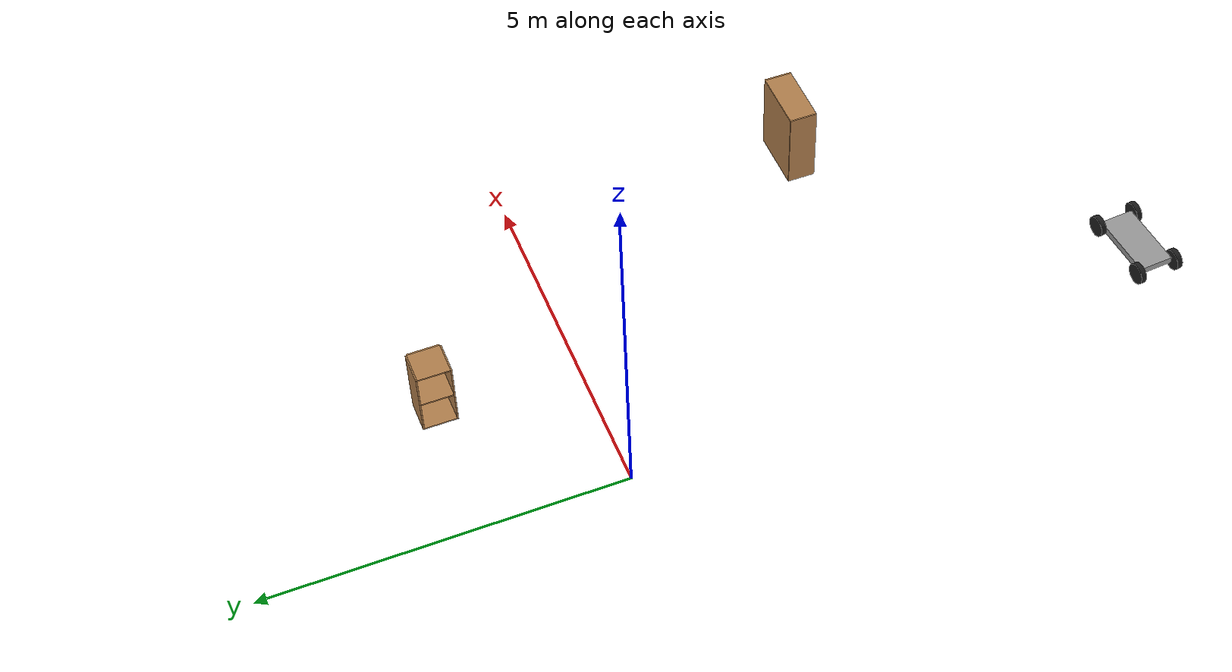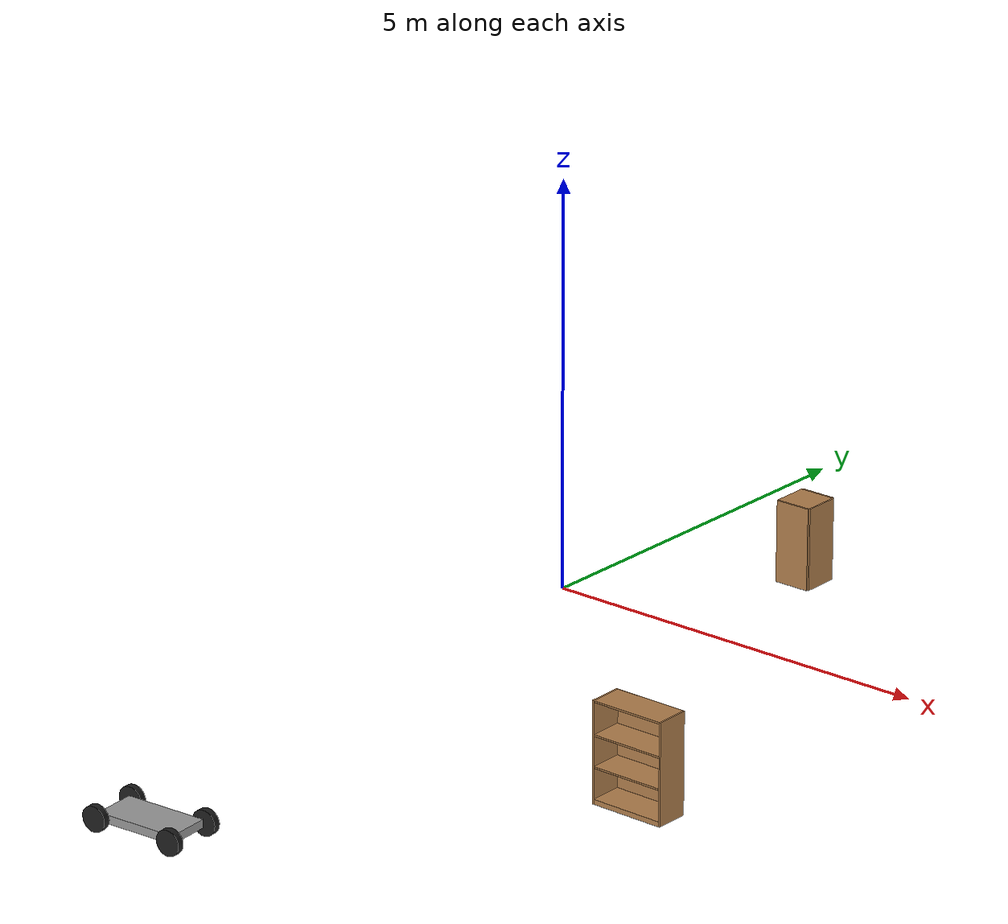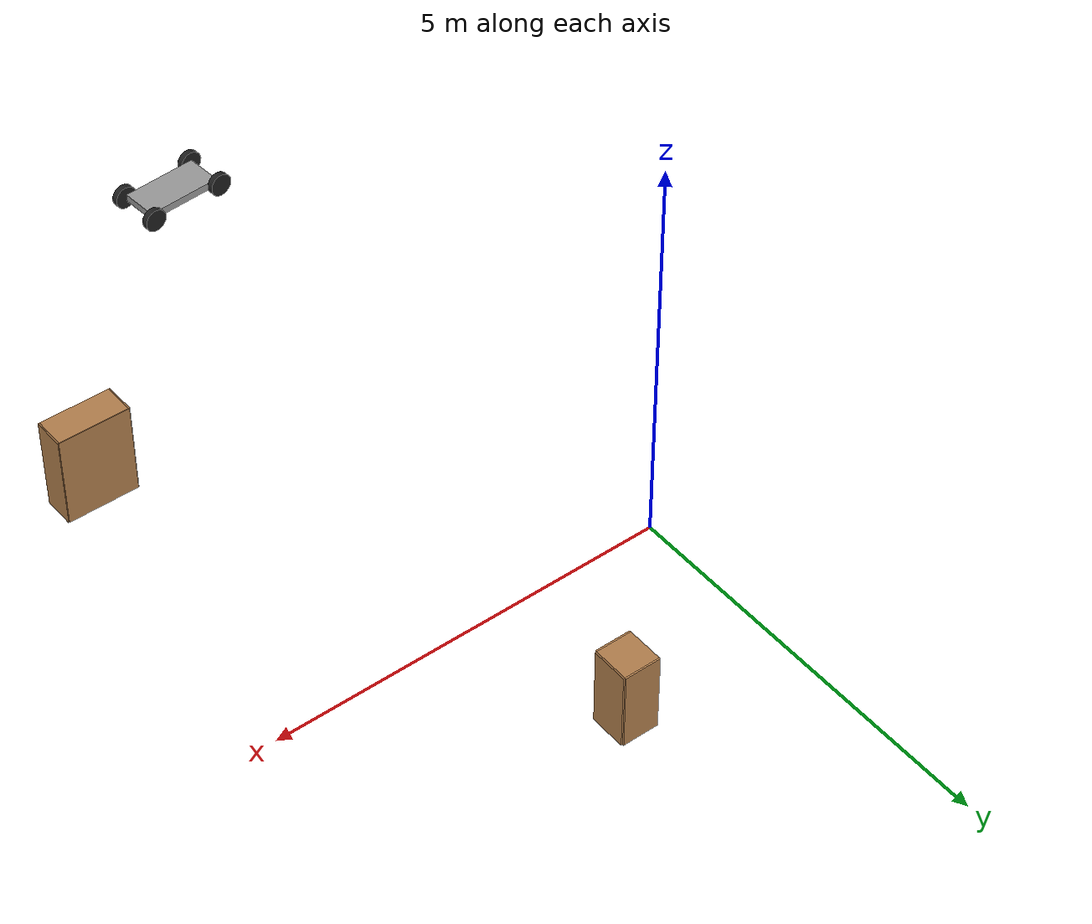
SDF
<sdf version="1.4">
 <world name="default">
  <scene><ambient>0.5 0.5 0.5 1</ambient><background>0.5 0.5 0.5 1</background><shadows>0</shadows></scene>
  <physics type="ode">
   <gravity>0 0 -9.81</gravity>
   <ode>
    <solver><type>quick</type><iters>10</iters><sor>1.3</sor></solver>
    <constraints>
     <cfm>0</cfm>
     <erp>0.2</erp>
     <contact_max_correcting_vel>10</contact_max_correcting_vel>
     <contact_surface_layer>0.001</contact_surface_layer>
    </constraints>
   </ode>
   <max_step_size>0.001</max_step_size>
   <real_time_factor>1</real_time_factor>
   <real_time_update_rate>1000</real_time_update_rate>
  </physics>
  <light name="directional_light_1" type="directional">
   <pose>0 20 20 0.1 0.1 0</pose>
   <diffuse>1 1 1 1</diffuse>
   <specular>1 1 1 1</specular>
   <attenuation><range>300</range></attenuation>
   <direction>0.1 0.1 -1</direction>
   <cast_shadows>0</cast_shadows>
  </light>
  <spherical_coordinates>
   <surface_model>EARTH_WGS84</surface_model>
   <latitude_deg>0</latitude_deg>
   <longitude_deg>0</longitude_deg>
   <elevation>0</elevation>
   <heading_deg>0</heading_deg>
  </spherical_coordinates>
  <model name="bookshelf">
   <static>1</static>
   <link name="link">
    <inertial><mass>1</mass></inertial>
    <collision name="back">
     <pose>0 0.005 0.6 0 -0 0</pose>
     <geometry><box><size>0.9 0.01 1.2</size></box></geometry>
    </collision>
    <visual name="visual1">
     <pose>0 0.005 0.6 0 -0 0</pose>
     <geometry><box><size>0.9 0.01 1.2</size></box></geometry>
     <material>
      <script><uri>file://media/materials/scripts/gazebo.material</uri><name>Gazebo/Wood</name></script>
     </material>
    </visual>
    <collision name="left_side">
     <pose>0.45 -0.195 0.6 0 -0 0</pose>
     <geometry><box><size>0.02 0.4 1.2</size></box></geometry>
    </collision>
    <visual name="visual2">
     <pose>0.45 -0.195 0.6 0 -0 0</pose>
     <geometry><box><size>0.02 0.4 1.2</size></box></geometry>
     <material>
      <script><uri>file://media/materials/scripts/gazebo.material</uri><name>Gazebo/Wood</name></script>
     </material>
    </visual>
    <collision name="right_side">
     <pose>-0.45 -0.195 0.6 0 -0 0</pose>
     <geometry><box><size>0.02 0.4 1.2</size></box></geometry>
    </collision>
    <visual name="visual3">
     <pose>-0.45 -0.195 0.6 0 -0 0</pose>
     <geometry><box><size>0.02 0.4 1.2</size></box></geometry>
     <material>
      <script><uri>file://media/materials/scripts/gazebo.material</uri><name>Gazebo/Wood</name></script>
     </material>
    </visual>
    <collision name="bottom">
     <pose>0 -0.195 0.03 0 -0 0</pose>
     <geometry><box><size>0.88 0.4 0.06</size></box></geometry>
    </collision>
    <visual name="visual4">
     <pose>0 -0.195 0.03 0 -0 0</pose>
     <geometry><box><size>0.88 0.4 0.06</size></box></geometry>
     <material>
      <script><uri>file://media/materials/scripts/gazebo.material</uri><name>Gazebo/Wood</name></script>
     </material>
    </visual>
    <collision name="top">
     <pose>0 -0.195 1.19 0 -0 0</pose>
     <geometry><box><size>0.88 0.4 0.02</size></box></geometry>
    </collision>
    <visual name="visual5">
     <pose>0 -0.195 1.19 0 -0 0</pose>
     <geometry><box><size>0.88 0.4 0.02</size></box></geometry>
     <material>
      <script><uri>file://media/materials/scripts/gazebo.material</uri><name>Gazebo/Wood</name></script>
     </material>
    </visual>
    <collision name="low_shelf">
     <pose>0 -0.195 0.43 0 -0 0</pose>
     <geometry><box><size>0.88 0.4 0.02</size></box></geometry>
    </collision>
    <visual name="visual6">
     <pose>0 -0.195 0.43 0 -0 0</pose>
     <geometry><box><size>0.88 0.4 0.02</size></box></geometry>
     <material>
      <script><uri>file://media/materials/scripts/gazebo.material</uri><name>Gazebo/Wood</name></script>
     </material>
    </visual>
    <collision name="high_shelf">
     <pose>0 -0.195 0.8 0 -0 0</pose>
     <geometry><box><size>0.88 0.4 0.02</size></box></geometry>
    </collision>
    <visual name="visual7">
     <pose>0 -0.195 0.8 0 -0 0</pose>
     <geometry><box><size>0.88 0.4 0.02</size></box></geometry>
     <material>
      <script><uri>file://media/materials/scripts/gazebo.material</uri><name>Gazebo/Wood</name></script>
     </material>
    </visual>
    <velocity_decay><linear>0</linear><angular>0</angular></velocity_decay>
   </link>
   <pose>4.53559 -4 0 0 -0 0</pose>
  </model>
  <model name="cabinet">
   <static>1</static>
   <link name="cabinet_bottom_plate">
    <inertial>
     <pose>0 0 -1 0 -0 0</pose>
     <inertia><ixx>2.05</ixx><ixy>0</ixy><ixz>0</ixz><iyy>2.05</iyy><iyz>0</iyz><izz>2.05</izz></inertia>
     <mass>25</mass>
    </inertial>
    <collision name="cabinet_bottom_plate_geom">
     <pose>0 0 0.01 0 -0 0</pose>
     <geometry><box><size>0.45 0.45 0.02</size></box></geometry>
    </collision>
    <visual name="cabinet_bottom_plate_geom_visual">
     <pose>0 0 0.01 0 -0 0</pose>
     <geometry><box><size>0.45 0.45 0.02</size></box></geometry>
     <material>
      <script><uri>file://media/materials/scripts/gazebo.material</uri><name>Gazebo/Wood</name></script>
     </material>
    </visual>
    <collision name="cabinet_bottom_plate_geom_cabinet_back_plate">
     <pose>0.235 0 0.51 0 -0 0</pose>
     <geometry><box><size>0.02 0.45 1.02</size></box></geometry>
    </collision>
    <visual name="cabinet_bottom_plate_geom_cabinet_back_plate_visual">
     <pose>0.235 0 0.51 0 -0 0</pose>
     <geometry><box><size>0.02 0.45 1.02</size></box></geometry>
     <material>
      <script><uri>file://media/materials/scripts/gazebo.material</uri><name>Gazebo/Wood</name></script>
     </material>
    </visual>
    <collision name="cabinet_bottom_plate_geom_cabinet_left_plate">
     <pose>0 0.235 0.51 0 -0 0</pose>
     <geometry><box><size>0.45 0.02 1.02</size></box></geometry>
    </collision>
    <visual name="cabinet_bottom_plate_geom_cabinet_left_plate_visual">
     <pose>0 0.235 0.51 0 -0 0</pose>
     <geometry><box><size>0.45 0.02 1.02</size></box></geometry>
     <material>
      <script><uri>file://media/materials/scripts/gazebo.material</uri><name>Gazebo/Wood</name></script>
     </material>
    </visual>
    <collision name="cabinet_bottom_plate_geom_cabinet_middle_plate">
     <pose>0 0 0.51 0 -0 0</pose>
     <geometry><box><size>0.45 0.45 0.02</size></box></geometry>
    </collision>
    <visual name="cabinet_bottom_plate_geom_cabinet_middle_plate_visual">
     <pose>0 0 0.51 0 -0 0</pose>
     <geometry><box><size>0.45 0.45 0.02</size></box></geometry>
     <material>
      <script><uri>file://media/materials/scripts/gazebo.material</uri><name>Gazebo/Wood</name></script>
     </material>
    </visual>
    <collision name="cabinet_bottom_plate_geom_cabinet_right_plate">
     <pose>0 -0.235 0.51 0 -0 0</pose>
     <geometry><box><size>0.45 0.02 1.02</size></box></geometry>
    </collision>
    <visual name="cabinet_bottom_plate_geom_cabinet_right_plate_visual">
     <pose>0 -0.235 0.51 0 -0 0</pose>
     <geometry><box><size>0.45 0.02 1.02</size></box></geometry>
     <material>
      <script><uri>file://media/materials/scripts/gazebo.material</uri><name>Gazebo/Wood</name></script>
     </material>
    </visual>
    <collision name="cabinet_bottom_plate_geom_cabinet_top_plate">
     <pose>0 0 1.01 0 -0 0</pose>
     <geometry><box><size>0.45 0.45 0.02</size></box></geometry>
    </collision>
    <visual name="cabinet_bottom_plate_geom_cabinet_top_plate_visual">
     <pose>0 0 1.01 0 -0 0</pose>
     <geometry><box><size>0.45 0.45 0.02</size></box></geometry>
     <material>
      <script><uri>file://media/materials/scripts/gazebo.material</uri><name>Gazebo/Wood</name></script>
     </material>
    </visual>
    <velocity_decay><linear>0</linear><angular>0</angular></velocity_decay>
   </link>
   <pose>2 2 0 0 -0 0</pose>
  </model>
  <model name="cart_front_steer">
   <link name="chassis">
    <pose>0 0 0.15 0 -0 0</pose>
    <inertial>
     <pose>0.1 0 0 0 -0 0</pose>
     <mass>10</mass>
     <inertia>
      <ixx>0.216667</ixx>
      <iyy>0.841667</iyy>
      <izz>1.04167</izz>
      <ixy>0</ixy>
      <ixz>0</ixz>
      <iyz>0</iyz>
     </inertia>
    </inertial>
    <collision name="collision"><geometry><box><size>1 0.5 0.1</size></box></geometry></collision>
    <visual name="visual">
     <geometry><box><size>1 0.5 0.1</size></box></geometry>
     <material>
      <script><uri>file://media/materials/scripts/gazebo.material</uri><name>Gazebo/Grey</name></script>
     </material>
    </visual>
    <velocity_decay><linear>0</linear><angular>0</angular></velocity_decay>
   </link>
   <link name="wheel_front_left">
    <pose>0.5 0.298 0.15 -1.5708 -0.0872665 -1.39308e-17</pose>
    <inertial>
     <mass>0.5</mass>
     <inertia>
      <ixx>0.00307917</ixx>
      <iyy>0.00307917</iyy>
      <izz>0.005625</izz>
      <ixy>0</ixy>
      <ixz>0</ixz>
      <iyz>0</iyz>
     </inertia>
    </inertial>
    <collision name="collision">
     <geometry><cylinder><radius>0.15</radius><length>0.08</length></cylinder></geometry>
    </collision>
    <visual name="visual">
     <geometry><cylinder><radius>0.15</radius><length>0.08</length></cylinder></geometry>
     <material>
      <script><uri>file://media/materials/scripts/gazebo.material</uri><name>Gazebo/Black</name></script>
     </material>
    </visual>
    <velocity_decay><linear>0</linear><angular>0</angular></velocity_decay>
   </link>
   <joint name="wheel_front_left_steer_spin" type="universal">
    <parent>chassis</parent>
    <child>wheel_front_left</child>
    <axis><xyz>0 -1 0</xyz><limit><lower>-0.610865</lower><upper>0.610865</upper></limit></axis>
    <axis2><xyz>0 0 1</xyz></axis2>
   </joint>
   <link name="wheel_front_right">
    <pose>0.5 -0.298 0.15 -1.5708 -0.0872665 -1.39308e-17</pose>
    <inertial>
     <mass>0.5</mass>
     <inertia>
      <ixx>0.00307917</ixx>
      <iyy>0.00307917</iyy>
      <izz>0.005625</izz>
      <ixy>0</ixy>
      <ixz>0</ixz>
      <iyz>0</iyz>
     </inertia>
    </inertial>
    <collision name="collision">
     <geometry><cylinder><radius>0.15</radius><length>0.08</length></cylinder></geometry>
    </collision>
    <visual name="visual">
     <geometry><cylinder><radius>0.15</radius><length>0.08</length></cylinder></geometry>
     <material>
      <script><uri>file://media/materials/scripts/gazebo.material</uri><name>Gazebo/Black</name></script>
     </material>
    </visual>
    <velocity_decay><linear>0</linear><angular>0</angular></velocity_decay>
   </link>
   <joint name="wheel_front_right_steer_spin" type="universal">
    <parent>chassis</parent>
    <child>wheel_front_right</child>
    <axis><xyz>0 -1 0</xyz><limit><lower>-0.610865</lower><upper>0.610865</upper></limit></axis>
    <axis2><xyz>0 0 1</xyz></axis2>
   </joint>
   <link name="wheel_rear_left">
    <pose>-0.5 0.298 0.15 -1.5708 0 0</pose>
    <inertial>
     <mass>0.5</mass>
     <inertia>
      <ixx>0.00307917</ixx>
      <iyy>0.00307917</iyy>
      <izz>0.005625</izz>
      <ixy>0</ixy>
      <ixz>0</ixz>
      <iyz>0</iyz>
     </inertia>
    </inertial>
    <collision name="collision">
     <geometry><cylinder><radius>0.15</radius><length>0.08</length></cylinder></geometry>
    </collision>
    <visual name="visual">
     <geometry><cylinder><radius>0.15</radius><length>0.08</length></cylinder></geometry>
     <material>
      <script><uri>file://media/materials/scripts/gazebo.material</uri><name>Gazebo/Black</name></script>
     </material>
    </visual>
    <velocity_decay><linear>0</linear><angular>0</angular></velocity_decay>
   </link>
   <joint name="wheel_rear_left_spin" type="revolute">
    <parent>chassis</parent>
    <child>wheel_rear_left</child>
    <axis><xyz>0 0 1</xyz><limit><lower>-1e+16</lower><upper>1e+16</upper></limit></axis>
   </joint>
   <link name="wheel_rear_right">
    <pose>-0.5 -0.298 0.15 -1.5708 0 0</pose>
    <inertial>
     <mass>0.5</mass>
     <inertia>
      <ixx>0.00307917</ixx>
      <iyy>0.00307917</iyy>
      <izz>0.005625</izz>
      <ixy>0</ixy>
      <ixz>0</ixz>
      <iyz>0</iyz>
     </inertia>
    </inertial>
    <collision name="collision">
     <geometry><cylinder><radius>0.15</radius><length>0.08</length></cylinder></geometry>
    </collision>
    <visual name="visual">
     <geometry><cylinder><radius>0.15</radius><length>0.08</length></cylinder></geometry>
     <material>
      <script><uri>file://media/materials/scripts/gazebo.material</uri><name>Gazebo/Black</name></script>
     </material>
    </visual>
    <velocity_decay><linear>0</linear><angular>0</angular></velocity_decay>
   </link>
   <joint name="wheel_rear_right_spin" type="revolute">
    <parent>chassis</parent>
    <child>wheel_rear_right</child>
    <axis><xyz>0 0 1</xyz><limit><lower>-1e+16</lower><upper>1e+16</upper></limit></axis>
   </joint>
   <pose>1.01067 -7.93876 0.005352 0.0079 0.002449 0.075229</pose>
   <static>0</static>
  </model>
 </world>
</sdf>
